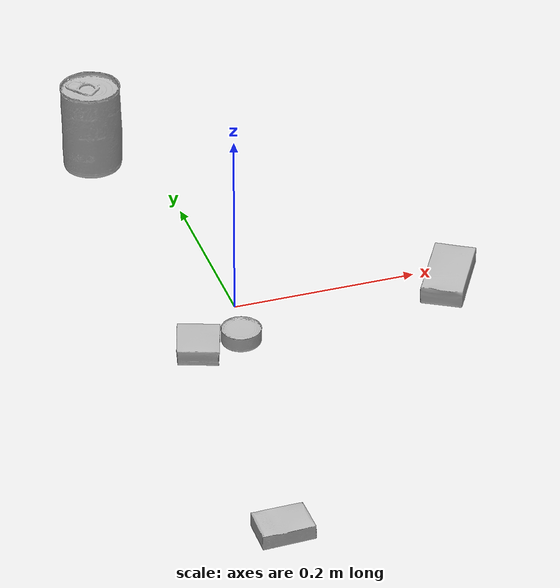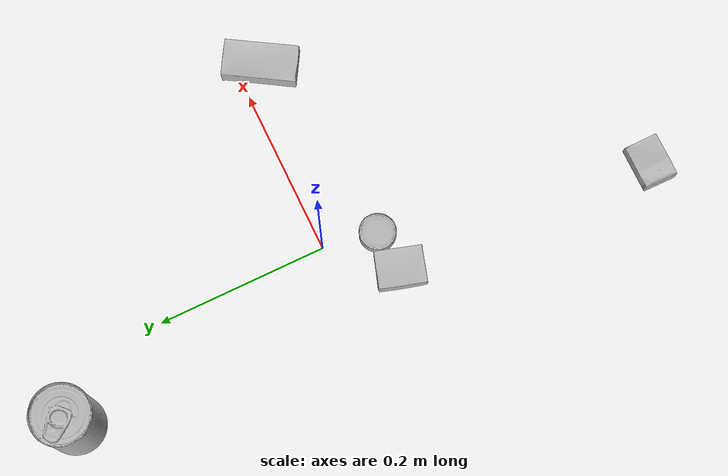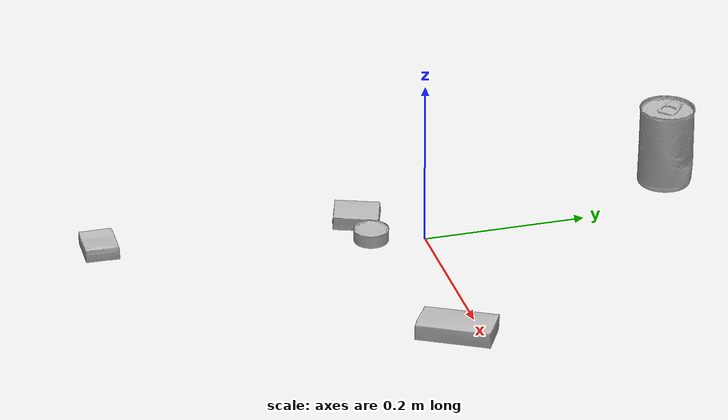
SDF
<sdf version="1.4">
  <world name="default">
    <light name="light1" type="point">
      <pose>0 0 1 0 0 0</pose>
      <diffuse>3 3 3 1</diffuse>
      <specular>3 3 3 1</specular>
    </light>
    <light name="light2" type="point">
      <pose>0 0.5 2 0 0 0</pose>
      <diffuse>1 1 1 1</diffuse>
      <specular>1 1 1 1</specular>
    </light>
    <light name="light3" type="point">
      <pose>0 0.5 2 0 0 0</pose>
      <diffuse>3 3 3 1</diffuse>
      <specular>3 3 3 1</specular>
    </light>
    <scene>
      <ambient>0.7 0.7 0.7</ambient>
    </scene>
    <model name="box1">
      <link name="link_box1">
        <collision name="default">
          <geometry>
            <mesh>
              <uri>model://cracker_box/collision_meshes/collision.obj</uri>
              <scale>0.25 0.25 0.25</scale>
            </mesh>
          </geometry>
          <surface>
            <friction>
              <ode>
                <mu>0.5</mu>
                <mu2>0.5</mu2>
              </ode>
            </friction>
          <contact>
        <ode>
            <max_vel>0</max_vel>
            <min_depth>0.0001</min_depth>
            <kp>1e8</kp>
        </ode>
    </contact></surface>
        </collision>
        <visual name="default">
          <geometry>
            <mesh>
              <uri>model://cracker_box/visual_meshes/visual.dae</uri>
              <scale>0.25 0.25 0.25</scale>
            </mesh>
          </geometry>
        </visual>
        <inertial>
          <mass>0.029061755165457726</mass>
          <pose>0.00023660456645302474 6.358561950037256e-05 -0.0004257383698131889 -0.0003162077745192934 -0.011106489600167671 0.002546795235645709</pose>
          <inertia>
            <ixx>4.620008e-06</ixx>
            <iyy>7.6285405e-06</iyy>
            <izz>1.0886628e-05</izz>
            <ixy>0</ixy>
            <ixz>0</ixz>
            <iyz>0</iyz>
          </inertia>
        </inertial>
      </link>
      <pose>-0.07283588498830795 -0.3793034851551056 0.009120452217757702 -0.011788023412508751 -0.007367163815431079 -0.009655651406412464</pose>
    </model>
    <model name="box2">
      <link name="link_box2">
        <collision name="default">
          <geometry>
            <mesh>
              <uri>model://sugar_box/collision_meshes/collision.obj</uri>
              <scale>0.5 0.5 0.5</scale>
            </mesh>
          </geometry>
          <surface>
            <friction>
              <ode>
                <mu>0.5</mu>
                <mu2>0.5</mu2>
              </ode>
            </friction>
          <contact>
        <ode>
            <max_vel>0</max_vel>
            <min_depth>0.0001</min_depth>
            <kp>1e8</kp>
        </ode>
    </contact></surface>
        </collision>
        <visual name="default">
          <geometry>
            <mesh>
              <uri>model://sugar_box/visual_meshes/visual.dae</uri>
              <scale>0.5 0.5 0.5</scale>
            </mesh>
          </geometry>
        </visual>
        <inertial>
          <mass>0.08909860998392105</mass>
          <pose>0.0005171863595023751 1.924554817378521e-05 -0.00018182402709499002 -0.00040462606756407727 0.0010506635218583888 0.002615378789044619</pose>
          <inertia>
            <ixx>1.8559176e-05</ixx>
            <iyy>5.9987076e-05</iyy>
            <izz>7.181169e-05</izz>
            <ixy>0</ixy>
            <ixz>0</ixz>
            <iyz>0</iyz>
          </inertia>
        </inertial>
      </link>
      <pose>0.22873884439468384 -0.02873820811510086 0.011399301700294018 0.000775242133221016 -0.02343320481484527 1.027773775804445</pose>
    </model>
    <model name="box3">
      <link name="link_box3">
        <collision name="default">
          <geometry>
            <mesh>
              <uri>model://pudding_box/collision_meshes/collision.obj</uri>
              <scale>0.5 0.5 0.5</scale>
            </mesh>
          </geometry>
          <surface>
            <friction>
              <ode>
                <mu>0.5</mu>
                <mu2>0.5</mu2>
              </ode>
            </friction>
          <contact>
        <ode>
            <max_vel>0</max_vel>
            <min_depth>0.0001</min_depth>
            <kp>1e8</kp>
        </ode>
    </contact></surface>
        </collision>
        <visual name="default">
          <geometry>
            <mesh>
              <uri>model://pudding_box/visual_meshes/visual.dae</uri>
              <scale>0.5 0.5 0.5</scale>
            </mesh>
          </geometry>
        </visual>
        <inertial>
          <mass>0.058397307991981506</mass>
          <pose>0.00024474109522998333 0.000403394311433658 -0.0002594413817860186 0.005213099939270767 -0.006603797768571226 0.020079825168092046</pose>
          <inertia>
            <ixx>1.650379e-05</ixx>
            <iyy>1.1103868e-05</iyy>
            <izz>2.437216e-05</izz>
            <ixy>0</ixy>
            <ixz>0</ixz>
            <iyz>0</iyz>
          </inertia>
        </inertial>
      </link>
      <pose>-0.06108630448579788 -0.06776516139507294 0.009862898848950863 0.02235984575128748 -0.011371338155566815 2.8325670134519627</pose>
    </model>
    <model name="can1">
      <link name="link_can1">
        <collision name="default">
          <geometry>
            <mesh>
              <uri>model://tuna_fish_can/collision_meshes/collision.obj</uri>
              <scale>0.5 0.5 0.5</scale>
            </mesh>
          </geometry>
          <surface>
            <friction>
              <ode>
                <mu>0.5</mu>
                <mu2>0.5</mu2>
              </ode>
            </friction>
          <contact>
        <ode>
            <max_vel>0</max_vel>
            <min_depth>0.0001</min_depth>
            <kp>1e8</kp>
        </ode>
    </contact></surface>
        </collision>
        <visual name="default">
          <geometry>
            <mesh>
              <uri>model://tuna_fish_can/visual_meshes/visual.dae</uri>
              <scale>0.5 0.5 0.5</scale>
            </mesh>
          </geometry>
        </visual>
        <inertial>
          <mass>0.024247437715530396</mass>
          <pose>-2.0361860151751898e-05 -7.256063781824196e-06 -0.000526902440469712 -0.0017944785229743307 0.0001716120442354053 0.2405371667019961</pose>
          <inertia>
            <ixx>3.2782896e-06</ixx>
            <iyy>3.2646258e-06</iyy>
            <izz>5.609621e-06</izz>
            <ixy>0</ixy>
            <ixz>0</ixz>
            <iyz>0</iyz>
          </inertia>
        </inertial>
      </link>
      <pose>-0.013093803077936172 -0.06259530037641525 0.008519930765032768 -7.877487957604936e-06 3.318483774045175e-05 -0.6115465448694737</pose>
    </model>
    <model name="can2">
      <link name="link_can2">
        <collision name="default">
          <geometry>
            <mesh>
              <uri>model://tomato_soup_can/collision_meshes/collision.obj</uri>
              <scale>1.0 1.0 1.0</scale>
            </mesh>
          </geometry>
          <surface>
            <friction>
              <ode>
                <mu>0.5</mu>
                <mu2>0.5</mu2>
              </ode>
            </friction>
          <contact>
        <ode>
            <max_vel>0</max_vel>
            <min_depth>0.0001</min_depth>
            <kp>1e8</kp>
        </ode>
    </contact></surface>
        </collision>
        <visual name="default">
          <geometry>
            <mesh>
              <uri>model://tomato_soup_can/visual_meshes/visual.dae</uri>
              <scale>1.0 1.0 1.0</scale>
            </mesh>
          </geometry>
        </visual>
        <inertial>
          <mass>0.44329848885536194</mass>
          <pose>0.0001265227037947625 0.00010805520287249237 -0.0017973989015445113 0.007020066893531886 0.00042299576578658417 -0.009903435969571123</pose>
          <inertia>
            <ixx>0.00048603912</ixx>
            <iyy>0.0004832301</iyy>
            <izz>0.00025190957</izz>
            <ixy>0</ixy>
            <ixz>0</ixz>
            <iyz>0</iyz>
          </inertia>
        </inertial>
      </link>
      <pose>-0.0652448758482933 0.3277284801006317 0.05127403512597084 -1.09588472612169e-07 -7.650047236605813e-08 -2.6558128118335276</pose>
    </model>
  <physics type="ode">
      <max_contacts>50</max_contacts>
      <ode>
        <solver>
          <type>quick</type>
          <iters>75</iters>
        </solver>
        <constraints>
          <contact_max_correcting_vel>0</contact_max_correcting_vel>
          <contact_surface_layer>0</contact_surface_layer>
        </constraints>
      </ode>
    </physics></world>
</sdf>
